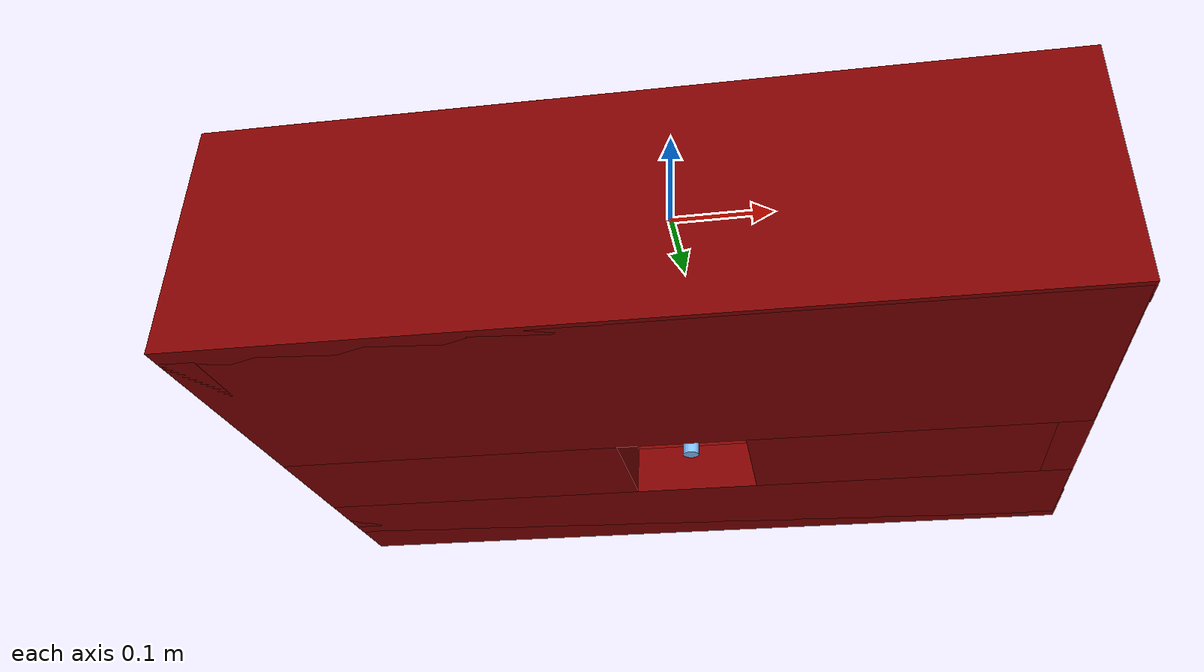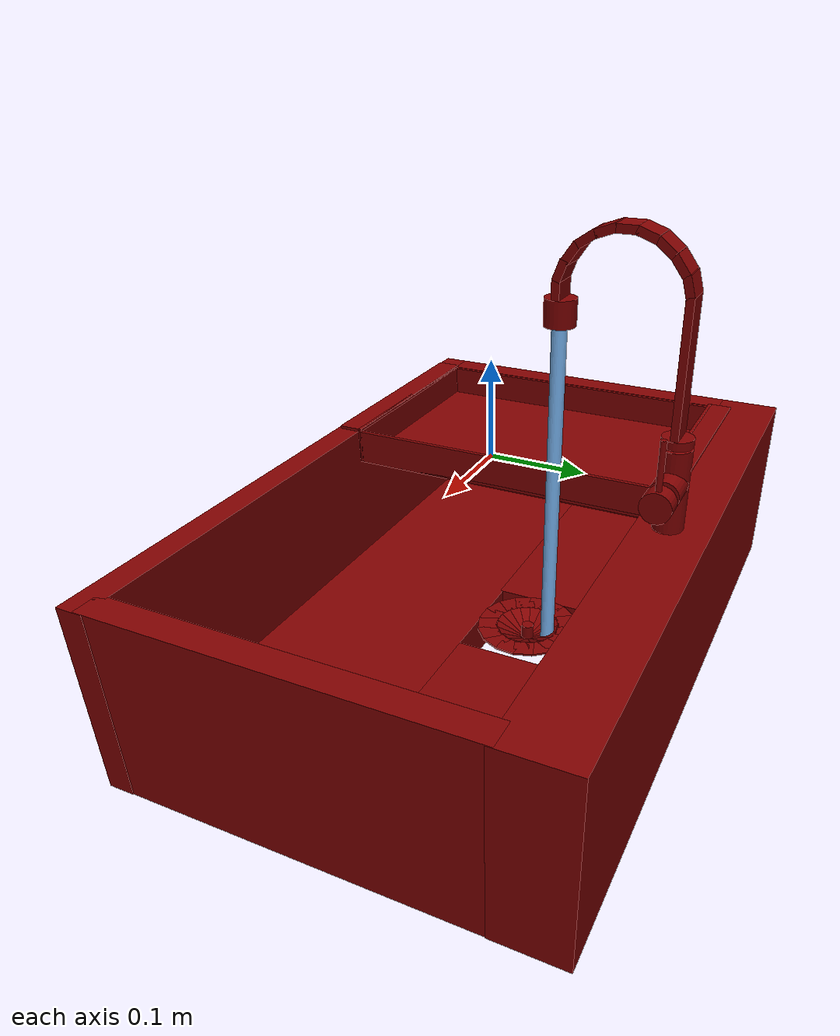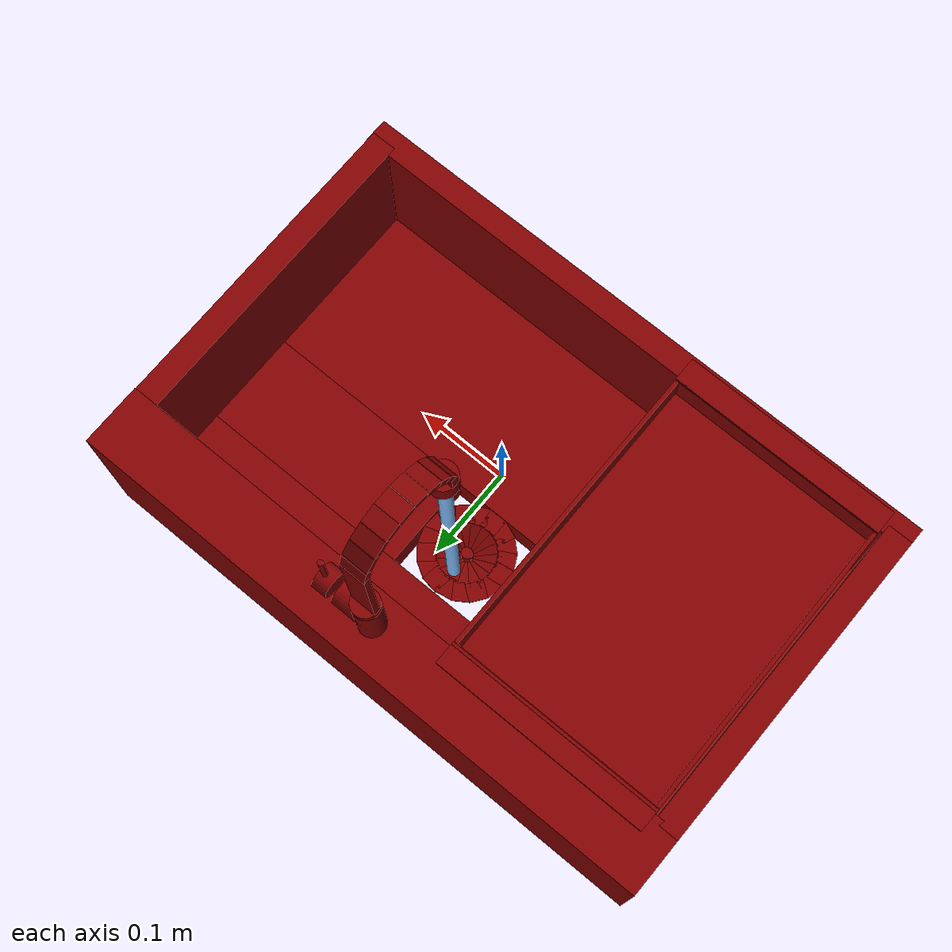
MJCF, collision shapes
<mujoco model="model">
  <compiler angle="radian"/>
  <asset>
    <mesh file="visuals/handle.obj" name="handle_vis"/>
    <mesh file="visuals/Body001.obj" name="Body001_vis"/>
    <mesh file="visuals/Container001.obj" name="Container001_vis"/>
    <mesh file="visuals/Funnel001.obj" name="Funnel001_vis"/>
    <mesh file="visuals/spout.obj" name="spout_vis"/>
    <texture file="visuals/T_BC001.png" name="Body001_material" type="2d"/>
    <material name="Body001_material" rgba="1 1 1 1.0" texture="Body001_material" shininess="0.141421377658844" specular="1"/>
    <texture file="visuals/T_BC001.png" name="handle_material" type="2d"/>
    <material name="handle_material" rgba="1 1 1 1.0" texture="handle_material" shininess="0.141421377658844" specular="2"/>
    <texture file="visuals/T_BC001.png" name="Container001_material" type="2d"/>
    <material name="Container001_material" rgba="1 1 1 1.0" texture="Container001_material" shininess="0.141421377658844" specular="0.3103448502657381"/>
    <texture file="visuals/T_BC001.png" name="Funnel001_material" type="2d"/>
    <material name="Funnel001_material" rgba="1 1 1 1.0" texture="Funnel001_material" shininess="0.141421377658844" specular="2"/>
    <texture file="visuals/T_BC001.png" name="spout_material" type="2d"/>
    <material name="spout_material" rgba="1 1 1 1.0" texture="spout_material" shininess="0.141421377658844" specular="2"/>
  </asset>
  <default>
    <default class="visual">
      <geom conaffinity="0" contype="0" group="1" type="mesh"/>
    </default>
    <default class="collision">
      <geom group="0" rgba="0.5 0 0 0.5"/>
    </default>
    <default class="spawn">
      <geom group="0" rgba="1 1 1 0.5" contype="0" conaffinity="0"/>
      <site group="0" rgba="1 1 1 0.5"/>
    </default>
    <default class="region">
      <geom group="1" conaffinity="0" contype="0" rgba="0 1 0 0"/>
    </default>
  </default>
  <worldbody>
    <body>
      <body name="object">
        <geom mesh="Body001_vis" type="mesh" solimp="0.998 0.998 0.001" solref="0.001 1" density="100" friction="0.95 0.3 0.1" class="visual" material="Body001_material"/>
        <geom class="collision" type="box" pos="0.0005376921035349369 -0.21847569942474365 -0.136440247297287" size="0.35532641410827637 0.013969678431749344 0.10168053209781647" quat="1.0 0.0 0.0 0.0"/>
        <geom class="collision" type="box" pos="-0.0002647433429956436 -0.11707393079996109 -0.2162827104330063" size="0.3545239567756653 0.11051830649375916 0.021838078275322914" quat="1.0 0.0 0.0 0.0"/>
        <geom class="collision" type="box" pos="-0.0002647433429956436 0.16783802211284637 -0.2162827104330063" size="0.3545239567756653 0.0628652423620224 0.021838078275322914" quat="1.0 0.0 0.0 0.0"/>
        <geom class="collision" type="box" pos="0.0005376921035349369 0.19599318504333496 -0.136440247297287" size="0.35532641410827637 0.03682418912649155 0.10168053209781647" quat="1.0 0.0 0.0 0.0"/>
        <geom class="collision" type="box" pos="-0.20100711286067963 0.05351879820227623 -0.2162827104330063" size="0.15378160774707794 0.0628652423620224 0.021838078275322914" quat="1.0 0.0 0.0 0.0"/>
        <geom class="collision" type="box" pos="0.199110209941864 0.05351879820227623 -0.2162827104330063" size="0.13272280991077423 0.0628652423620224 0.021838078275322914" quat="1.0 0.0 0.0 0.0"/>
        <geom class="collision" type="box" pos="-0.3402691185474396 -0.02451847493648529 -0.136440247297287" size="0.01451962161809206 0.19041675329208374 0.10168053209781647" quat="1.0 0.0 0.0 0.0"/>
        <geom class="collision" type="box" pos="0.34061792492866516 -0.02451847493648529 -0.136440247297287" size="0.01451962161809206 0.19041675329208374 0.10168053209781647" quat="1.0 0.0 0.0 0.0"/>
        <geom class="collision" type="cylinder" pos="0.008839156478643417 0.1905600130558014 0.006005296483635902" size="0.015300664119422436 0.042066384106874466" quat="1.0 0.0 0.0 0.0"/>
        <geom class="collision" type="cylinder" pos="0.024994343519210815 0.1905600130558014 0.01319047436118126" size="0.015300665982067585 0.01876227930188179" quat="0.7071068286895752 0.0 -0.7071067690849304 0.0"/>
        <body name="handle">
          <joint axis="1.0 0.0 0.0" pos="0.05906230956315994 0.19032001495361328 0.012800361961126328" limited="true" name="handle_joint_hinge_0" type="hinge" range="-0.7853981633974483 0.7853981633974483" damping="1" frictionloss="1" armature=".01" stiffness="0.05"/>
          <joint axis="0.0 1.0 0.0" pos="0.05906230956315994 0.19032001495361328 0.012800361961126328" limited="true" name="handle_joint_hinge_1" type="hinge" range="0.0 0.17453292519943295" damping="1" frictionloss="1" armature=".01" stiffness="0.05"/>
          <geom mesh="handle_vis" type="mesh" solimp="0.998 0.998 0.001" solref="0.001 1" density="100" friction="0.95 0.3 0.1" class="visual" material="handle_material"/>
          <geom class="collision" type="cylinder" pos="0.05993214622139931 0.1905600130558014 0.01319047436118126" size="0.015300667844712734 0.009021526202559471" quat="0.7071068286895752 0.0 -0.7071067690849304 0.0"/>
          <geom class="collision" type="cylinder" pos="0.06259022653102875 0.19027121365070343 0.051185812801122665" size="0.003057922935113311 0.02486662194132805" quat="7.549790126404332e-08 -0.0 -1.0 -0.0"/>
        </body>
        <body name="Container001">
          <joint axis="0.0 0.0 1.0" pos="-0.193882018327713 -0.02310939133167267 -0.05167678743600845" limited="true" name="Container001_joint" range="0.0 0.1" type="slide" damping="1" frictionloss="1" armature=".01" stiffness="0.05"/>
          <geom mesh="Container001_vis" type="mesh" solimp="0.998 0.998 0.001" solref="0.001 1" density="100" friction="0.95 0.3 0.1" class="visual" material="Container001_material"/>
          <geom class="collision" type="box" pos="-0.1939459890127182 -0.022472580894827843 -0.06992444396018982" size="0.12832015752792358 0.18015123903751373 0.0020639626309275627" quat="1.0 0.0 0.0 0.0"/>
          <geom class="collision" type="box" pos="-0.1939459890127182 -0.20150455832481384 -0.051240816712379456" size="0.12832015752792358 0.0017774796579033136 0.02072480507194996" quat="1.0 0.0 0.0 0.0"/>
          <geom class="collision" type="box" pos="-0.1939459890127182 0.15606608986854553 -0.051240816712379456" size="0.12832015752792358 0.0017774796579033136 0.02072480507194996" quat="1.0 0.0 0.0 0.0"/>
          <geom class="collision" type="box" pos="-0.1939459890127182 -0.21370342373847961 -0.0321321077644825" size="0.12832015752792358 0.013976345770061016 0.001616097055375576" quat="1.0 0.0 0.0 0.0"/>
          <geom class="collision" type="box" pos="-0.1939459890127182 0.16761654615402222 -0.03262577950954437" size="0.12832015752792358 0.013976345770061016 0.001616097055375576" quat="1.0 0.0 0.0 0.0"/>
          <geom class="collision" type="box" pos="-0.06785516440868378 -0.022472580894827843 -0.05299340933561325" size="0.0022293413057923317 0.18015123903751373 0.019003160297870636" quat="1.0 0.0 0.0 0.0"/>
          <geom class="collision" type="box" pos="-0.31990814208984375 -0.022472580894827843 -0.05299340933561325" size="0.0022293413057923317 0.18015123903751373 0.019003160297870636" quat="1.0 0.0 0.0 0.0"/>
        </body>
        <body name="Funnel001">
          <joint axis="0.0 0.0 1.0" pos="0.009307553991675377 0.048979148268699646 -0.1984708607196808" limited="true" name="Funnel001_joint" range="0.0 0.1" type="slide" damping="1" frictionloss="1" armature=".01" stiffness="0.05"/>
          <geom mesh="Funnel001_vis" type="mesh" solimp="0.998 0.998 0.001" solref="0.001 1" density="100" friction="0.95 0.3 0.1" class="visual" material="Funnel001_material"/>
          <geom class="collision" type="box" pos="0.008941886946558952 0.005341924726963043 -0.1912476271390915" size="0.010534909553825855 0.010785062797367573 0.001017694710753858" quat="1.0 0.0 0.0 0.0"/>
          <geom class="collision" type="box" pos="0.008941886015236378 0.028430961072444916 -0.198435440659523" size="0.010534909553825855 0.015278312377631664 0.0010176937794312835" quat="0.9664247035980225 -0.2569500207901001 -0.0 0.0"/>
          <geom class="collision" type="box" pos="-0.006617531180381775 0.008360810577869415 -0.1912476271390915" size="0.010534909553825855 0.010785062797367573 0.001017694710753858" quat="0.983372688293457 0.0 -0.0 -0.18159885704517365"/>
          <geom class="collision" type="box" pos="0.0016289160121232271 0.029926979914307594 -0.19843542575836182" size="0.010534909553825855 0.015278313308954239 0.0010176937794312835" quat="0.9503556489944458 -0.2526777386665344 0.046661846339702606 -0.17550158500671387"/>
          <geom class="collision" type="box" pos="-0.004733966197818518 0.033998459577560425 -0.19843542575836182" size="0.010534909553825855 0.01527831144630909 0.0010176937794312835" quat="0.9019154906272888 -0.23979853093624115 0.09230377525091171 -0.3471672832965851"/>
          <geom class="collision" type="box" pos="-0.02021515928208828 0.0168684720993042 -0.1912476271390915" size="0.010534909553825855 0.010785062797367573 0.001017694710753858" quat="0.9332496523857117 0.0 -0.0 -0.3592284917831421"/>
          <geom class="collision" type="box" pos="-0.029600532725453377 0.029273465275764465 -0.1912476271390915" size="0.010534909553825855 0.010785062797367573 0.001017694710753858" quat="0.8542832136154175 0.0 -0.0 -0.5198078751564026"/>
          <geom class="collision" type="box" pos="-0.009094553999602795 0.039885178208351135 -0.19843542575836182" size="0.010534909553825855 0.015278312377631664 0.0010176937794312835" quat="0.8256003856658936 -0.2195081263780594 0.13356466591358185 -0.50235515832901"/>
          <geom class="collision" type="box" pos="-0.011103366501629353 0.046830158680677414 -0.19843542575836182" size="0.010534909553825855 0.015278312377631664 0.0010176937794312835" quat="0.7243714332580566 -0.19259366393089294 0.1700911670923233 -0.6397364139556885"/>
          <geom class="collision" type="box" pos="-0.03401532769203186 0.043976061046123505 -0.1912476271390915" size="0.010534909553825855 0.010785062797367573 0.001017694710753858" quat="0.7495374083518982 0.0 -0.0 -0.6619619727134705"/>
          <geom class="collision" type="box" pos="-0.03295079618692398 0.059758514165878296 -0.1912476271390915" size="0.010534909553825855 0.010785062797367573 0.001017694710753858" quat="0.617149829864502 0.0 -0.0 -0.7868456840515137"/>
          <geom class="collision" type="box" pos="-0.010526648722589016 0.05425750091671944 -0.19843542575836182" size="0.010534909553825855 0.015278312377631664 0.0010176937794312835" quat="0.5964288115501404 -0.15857671201229095 0.20218007266521454 -0.7604270577430725"/>
          <geom class="collision" type="box" pos="-0.007023243699222803 0.06141942739486694 -0.19843542575836182" size="0.010534909553825855 0.015278312377631664 0.0010176937794312835" quat="0.43760189414024353 -0.1163482591509819 0.2290991246700287 -0.8616735339164734"/>
          <geom class="collision" type="box" pos="-0.02566649578511715 0.07504045963287354 -0.1912476271390915" size="0.010534909553825855 0.010785062797367573 0.001017694710753858" quat="0.45280495285987854 0.0 -0.0 -0.8916096091270447"/>
          <geom class="collision" type="box" pos="-0.014346346259117126 0.08563309907913208 -0.1912476271390915" size="0.010534909553825855 0.010785062797367573 0.001017694710753858" quat="0.2872273027896881 0.0 -0.0 -0.9578624367713928"/>
          <geom class="collision" type="box" pos="-0.0016416398575529456 0.06635373085737228 -0.19843542575836182" size="0.010534909553825855 0.015278312377631664 0.0010176937794312835" quat="0.2775835394859314 -0.07380306720733643 0.246122807264328 -0.925701916217804"/>
          <geom class="collision" type="box" pos="0.005647306330502033 0.0691973865032196 -0.19843542575836182" size="0.010534909553825855 0.01527831144630909 0.0010176937794312835" quat="0.09630388766527176 -0.02560499869287014 0.2556712031364441 -0.9616143703460693"/>
          <geom class="collision" type="box" pos="0.001176418736577034 0.09129487723112106 -0.1912476271390915" size="0.010534909553825855 0.010785062797367573 0.001017694710753858" quat="0.09964966028928757 0.0 -0.0 -0.9950225949287415"/>
          <geom class="collision" type="box" pos="0.016370858997106552 0.09204737842082977 -0.1912476271390915" size="0.010534909553825855 0.010785062797367573 0.001017694710753858" quat="0.07636753469705582 0.0 0.0 0.9970797300338745"/>
          <geom class="collision" type="box" pos="0.012854654341936111 0.06922765076160431 -0.19843542575836182" size="0.010534909553825855 0.015278312377631664 0.0010176937794312835" quat="0.07380346953868866 -0.019622646272182465 -0.25619974732398987 0.9636024832725525"/>
          <geom class="collision" type="box" pos="0.02003386802971363 0.06652729958295822 -0.19843542575836182" size="0.010534909553825855 0.015278312377631664 0.0010176937794312835" quat="0.25232169032096863 -0.06708654761314392 -0.24803785979747772 0.9329043030738831"/>
          <geom class="collision" type="box" pos="0.03167222440242767 0.08646851778030396 -0.1912476271390915" size="0.010534909553825855 0.010785062797367573 0.001017694710753858" quat="0.26108789443969727 0.0 0.0 0.965315043926239"/>
          <geom class="collision" type="box" pos="0.043686434626579285 0.07589393854141235 -0.1912476271390915" size="0.010534909553825855 0.010785062797367573 0.001017694710753858" quat="0.4336804449558258 0.0 0.0 0.9010667204856873"/>
          <geom class="collision" type="box" pos="0.025641195476055145 0.0614900141954422 -0.19843542575836182" size="0.010534909553825855 0.015278312377631664 0.0010176937794312835" quat="0.4191194772720337 -0.11143424361944199 -0.23152922093868256 0.8708131313323975"/>
          <geom class="collision" type="box" pos="0.029029611498117447 0.05485641956329346 -0.19843542575836182" size="0.010534909553825855 0.015278312377631664 0.0010176937794312835" quat="0.5699891448020935 -0.15154705941677094 -0.20750154554843903 0.7804415225982666"/>
          <geom class="collision" type="box" pos="0.05102374404668808 0.06188222020864487 -0.1912476271390915" size="0.010534909553825855 0.010785062797367573 0.001017694710753858" quat="0.5897916555404663 0.0 0.0 0.8075554370880127"/>
          <geom class="collision" type="box" pos="0.0528598427772522 0.04581174999475479 -0.1912476271390915" size="0.010534909553825855 0.010785062797367573 0.001017694710753858" quat="0.729236900806427 0.0 0.0 0.6842613220214844"/>
          <geom class="collision" type="box" pos="0.029817506670951843 0.047279585152864456 -0.19843542575836182" size="0.010534909553825855 0.015278313308954239 0.0010176937794312835" quat="0.704752504825592 -0.18737751245498657 -0.17582103610038757 0.6612870097160339"/>
          <geom class="collision" type="box" pos="0.02766343206167221 0.039679355919361115 -0.19843542575836182" size="0.010534909553825855 0.015278312377631664 0.0010176937794312835" quat="0.8187047839164734 -0.2176748365163803 -0.1365322321653366 0.513516366481781"/>
          <geom class="collision" type="box" pos="0.048449933528900146 0.029628237709403038 -0.1912476271390915" size="0.010534909553825855 0.010785062797367573 0.001017694710753858" quat="0.8471481204032898 0.0 0.0 0.5313568115234375"/>
          <geom class="collision" type="box" pos="0.0386122390627861 0.01661773771047592 -0.1912476271390915" size="0.010534909553825855 0.010785062797367573 0.001017694710753858" quat="0.9315263628959656 0.0 0.0 0.3636738061904907"/>
          <geom class="collision" type="box" pos="0.022968411445617676 0.03359932452440262 -0.19843542575836182" size="0.010534909553825855 0.015278312377631664 0.0010176937794312835" quat="0.9002500176429749 -0.23935586214065552 -0.09344607591629028 0.3514634370803833"/>
          <geom class="collision" type="box" pos="0.016572166234254837 0.029743239283561707 -0.19843542575836182" size="0.010534909553825855 0.015278312377631664 0.0010176937794312835" quat="0.9491258859634399 -0.25235074758529663 -0.04839891940355301 0.18203498423099518"/>
          <geom class="collision" type="box" pos="0.02511454187333584 0.008292559534311295 -0.1912476271390915" size="0.010534909553825855 0.010785062797367573 0.001017694710753858" quat="0.9821001887321472 0.0 0.0 0.18835927546024323"/>
          <geom class="collision" type="cylinder" pos="0.00924401544034481 0.04897775501012802 -0.19782409071922302" size="0.006529988721013069 0.007717803120613098" quat="1.0 0.0 0.0 0.0"/>
        </body>
        <body name="spout">
          <joint axis="0.0 0.0 1.0" pos="0.008679701946675777 0.19031986594200134 0.14020773768424988" limited="true" name="spout_joint" range="-0.7853981633974483 0.7853981633974483" type="hinge" damping="1" frictionloss="1" armature=".01" stiffness="0.05"/>
          <site type="cylinder" rgba="0.5 0.75 1 1" size="0.007279556710273027 0.18189847469329834" pos="0.00860593281686306 0.07199980318546295 -0.0347701758146286" name="water"/>
          <geom mesh="spout_vis" type="mesh" solimp="0.998 0.998 0.001" solref="0.001 1" density="100" friction="0.95 0.3 0.1" class="visual" material="spout_material"/>
          <geom class="collision" type="cylinder" pos="0.008839156478643417 0.1905600130558014 0.054274123162031174" size="0.015300664119422436 0.004239031113684177" quat="1.0 0.0 0.0 0.0"/>
          <geom class="collision" type="box" pos="0.00868565496057272 0.19022472202777863 0.1219596117734909" size="0.014188708737492561 0.00378295686095953 0.06361405551433563" quat="1.0 0.0 0.0 0.0"/>
          <geom class="collision" type="box" pos="0.00868565496057272 0.18784454464912415 0.1929425299167633" size="0.014188697561621666 0.003859864315018058 0.009694489650428295" quat="0.9901295304298401 0.14015524089336395 0.0 0.0"/>
          <geom class="collision" type="box" pos="0.00868565496057272 0.17919452488422394 0.20913836359977722" size="0.014188697561621666 0.003834041766822338 0.009684526361525059" quat="0.9466893672943115 0.3221478760242462 0.0 0.0"/>
          <geom class="collision" type="box" pos="0.00868565496057272 0.16576509177684784 0.2223837524652481" size="0.014188697561621666 0.0038910070434212685 0.009706424549221992" quat="0.8968712091445923 0.4422917664051056 0.0 0.0"/>
          <geom class="collision" type="box" pos="0.008685656823217869 0.14963063597679138 0.23115645349025726" size="0.014188701286911964 0.003931689541786909 0.009721888229250908" quat="0.8145753145217896 0.5800578594207764 0.0 0.0"/>
          <geom class="collision" type="box" pos="0.00868565496057272 0.13216862082481384 0.23423366248607635" size="0.014188704080879688 0.009692053310573101 0.0038535334169864655" quat="1.0 0.0 0.0 0.0"/>
          <geom class="collision" type="box" pos="0.00868565496057272 0.11398517340421677 0.23158344626426697" size="0.014188699424266815 0.003997397609055042 0.009746549651026726" quat="0.576590359210968 0.8170334100723267 0.0 0.0"/>
          <geom class="collision" type="box" pos="0.008685656823217869 0.0973299965262413 0.22383397817611694" size="0.014188701286911964 0.0038774432614445686 0.009701238945126534" quat="0.4736131727695465 0.8807329535484314 0.0 0.0"/>
          <geom class="collision" type="box" pos="0.008685656823217869 0.08439585566520691 0.2112576961517334" size="0.014188701286911964 0.004022641107439995 0.009755922481417656" quat="0.3026302456855774 0.9531080722808838 0.0 0.0"/>
          <geom class="collision" type="box" pos="0.008685656823217869 0.07527550309896469 0.1957060843706131" size="0.014188702218234539 0.003971736412495375 0.009736965410411358" quat="0.1847800761461258 0.9827799201011658 0.0 0.0"/>
          <geom class="collision" type="box" pos="0.00868565496057272 0.0718502402305603 0.17960229516029358" size="0.014188701286911964 0.0038539832457900047 0.009692225605249405" quat="0.004763779696077108 0.9999886751174927 0.0 0.0"/>
          <geom class="collision" type="cylinder" pos="0.008839156478643417 0.07221023738384247 0.15753813087940216" size="0.015300664119422436 0.01267433911561966" quat="1.0 0.0 0.0 0.0"/>
        </body>
        <geom class="region" name="reg_main" type="box" pos="0.0 0.0 -0.13636097311973572" size="0.3549557328224182 0.23226298391819 0.10134555399417877"/>
        <geom class="region" name="reg_basin" type="box" pos="0.12902585230767727 -0.022363431751728058 -0.11664702370762825" size="0.1910617295652628 0.17721300572156906 0.07586799189448357"/>
      </body>
    </body>
  </worldbody>
  <actuator>
    <motor name="handle_joint_hinge_0_actuator" joint="handle_joint_hinge_0" gear="10"/>
    <motor name="handle_joint_hinge_1_actuator" joint="handle_joint_hinge_1" gear="10"/>
    <motor name="Container001_joint_actuator" joint="Container001_joint" gear="20"/>
    <motor name="Funnel001_joint_actuator" joint="Funnel001_joint" gear="10"/>
    <motor name="spout_joint_actuator" joint="spout_joint" gear="10"/>
  </actuator>
</mujoco>
